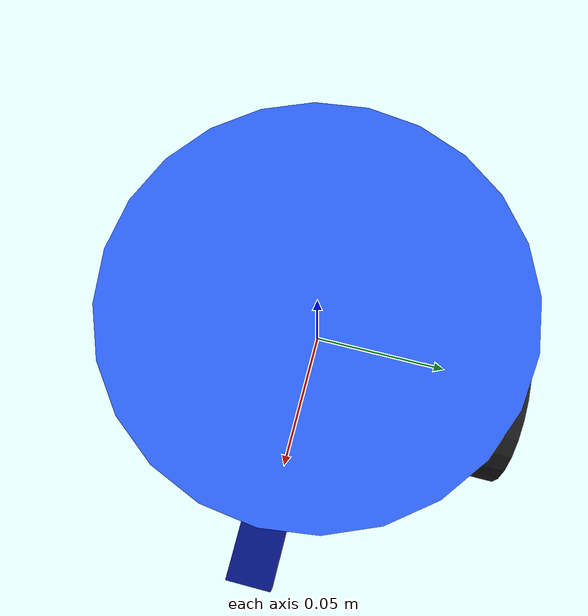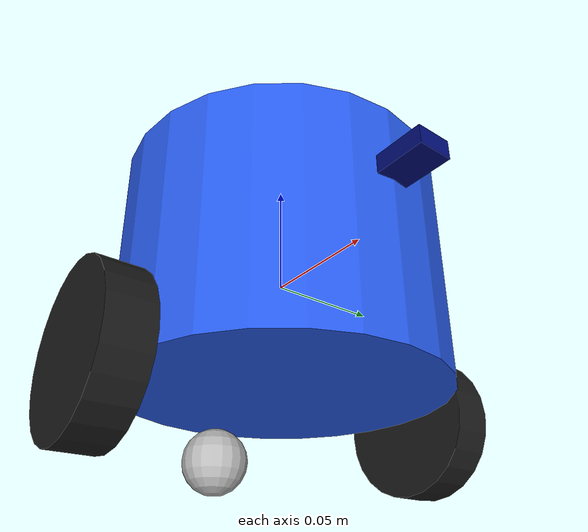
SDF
<?xml version="1.0" ?>
<sdf version="1.8">
  <model name="robot3">
    <link name="base_link">
      <inertial>
        <mass>1.0</mass>
        <pose>0 0 -0.02 0 0 0</pose>
        <inertia><ixx>0.01</ixx><iyy>0.01</iyy><izz>0.01</izz></inertia>
      </inertial>
      <collision name="collision">
        <geometry><cylinder><radius>0.07</radius><length>0.10</length></cylinder></geometry>
      </collision>
      <!-- GREEN body — matches RViz pheromone trail and Gazebo dot colors -->
      <visual name="body">
        <geometry><cylinder><radius>0.07</radius><length>0.10</length></cylinder></geometry>
        <material>
          <ambient>0.15 0.35 0.90 1</ambient>
          <diffuse>0.15 0.35 0.90 1</diffuse>
        </material>
      </visual>
      <!-- Forward direction indicator arrow -->
      <visual name="arrow">
        <pose>0.07 0 0.02 0 0 0</pose>
        <geometry><box><size>0.04 0.015 0.008</size></box></geometry>
        <material><ambient>0.0 0.05 0.45 1</ambient><diffuse>0.0 0.05 0.45 1</diffuse></material>
      </visual>
      <sensor name="camera" type="camera">
        <pose>0.05 0 0.12 0 0 0</pose>
        <camera>
          <horizontal_fov>1.089</horizontal_fov>
          <image><width>640</width><height>480</height></image>
          <clip><near>0.05</near><far>10.0</far></clip>
        </camera>
        <always_on>1</always_on>
        <update_rate>10</update_rate>
        <visualize>true</visualize>
        <topic>/robot3/camera/image_raw</topic>
      </sensor>
    </link>

    <link name="left_wheel">
      <pose>0 0.08 -0.05 -1.5708 0 0</pose>
      <inertial><mass>0.1</mass>
        <inertia><ixx>0.0001</ixx><iyy>0.0001</iyy><izz>0.0001</izz></inertia>
      </inertial>
      <collision name="col">
        <geometry><cylinder><radius>0.033</radius><length>0.018</length></cylinder></geometry>
        <surface><friction><ode><mu>1.0</mu><mu2>1.0</mu2></ode></friction></surface>
      </collision>
      <visual name="vis">
        <geometry><cylinder><radius>0.033</radius><length>0.018</length></cylinder></geometry>
        <material><ambient>0.1 0.1 0.1 1</ambient></material>
      </visual>
    </link>

    <link name="right_wheel">
      <pose>0 -0.08 -0.05 -1.5708 0 0</pose>
      <inertial><mass>0.1</mass>
        <inertia><ixx>0.0001</ixx><iyy>0.0001</iyy><izz>0.0001</izz></inertia>
      </inertial>
      <collision name="col">
        <geometry><cylinder><radius>0.033</radius><length>0.018</length></cylinder></geometry>
        <surface><friction><ode><mu>1.0</mu><mu2>1.0</mu2></ode></friction></surface>
      </collision>
      <visual name="vis">
        <geometry><cylinder><radius>0.033</radius><length>0.018</length></cylinder></geometry>
        <material><ambient>0.1 0.1 0.1 1</ambient></material>
      </visual>
    </link>

    <link name="caster">
      <pose>-0.05 0 -0.068 0 0 0</pose>
      <inertial><mass>0.05</mass>
        <inertia><ixx>0.0001</ixx><iyy>0.0001</iyy><izz>0.0001</izz></inertia>
      </inertial>
      <collision name="col">
        <geometry><sphere><radius>0.015</radius></sphere></geometry>
        <surface><friction><ode><mu>0.0</mu><mu2>0.0</mu2></ode></friction></surface>
      </collision>
      <visual name="vis">
        <geometry><sphere><radius>0.015</radius></sphere></geometry>
      </visual>
    </link>

    <joint name="left_wheel_joint"  type="revolute">
      <parent>base_link</parent><child>left_wheel</child>
      <axis><xyz>0 0 1</xyz></axis>
    </joint>
    <joint name="right_wheel_joint" type="revolute">
      <parent>base_link</parent><child>right_wheel</child>
      <axis><xyz>0 0 1</xyz></axis>
    </joint>
    <joint name="caster_joint" type="fixed">
      <parent>base_link</parent><child>caster</child>
    </joint>

    <plugin filename="gz-sim-diff-drive-system"
            name="gz::sim::systems::DiffDrive">
      <left_joint>left_wheel_joint</left_joint>
      <right_joint>right_wheel_joint</right_joint>
      <wheel_separation>0.16</wheel_separation>
      <wheel_radius>0.033</wheel_radius>
      <odom_publish_frequency>30</odom_publish_frequency>
      <topic>/robot3/cmd_vel</topic>
      <odom_topic>/robot3/odom</odom_topic>
      <tf_topic>/robot3/tf</tf_topic>
    </plugin>
  </model>
</sdf>
